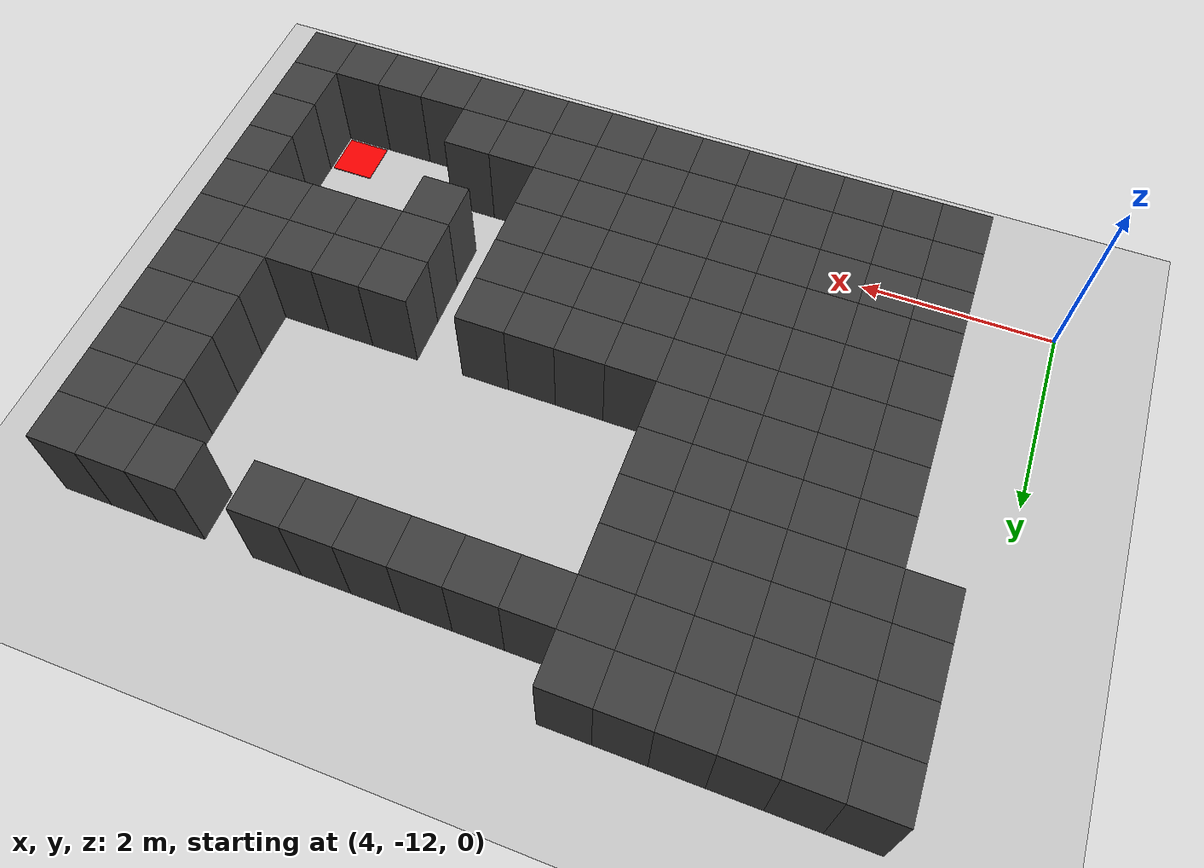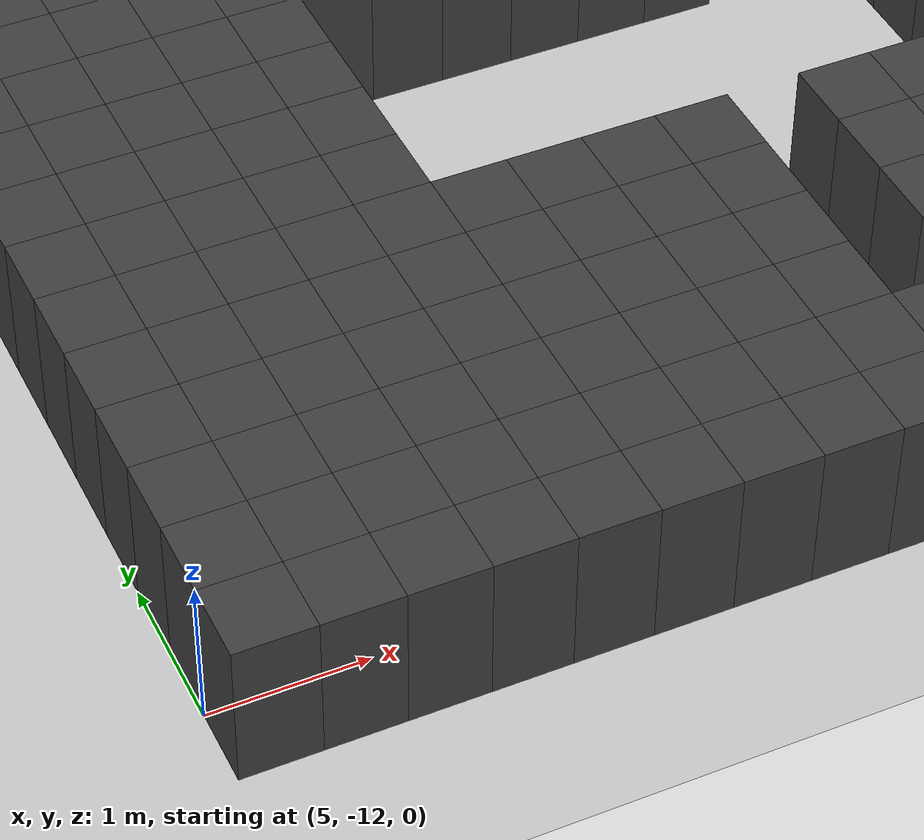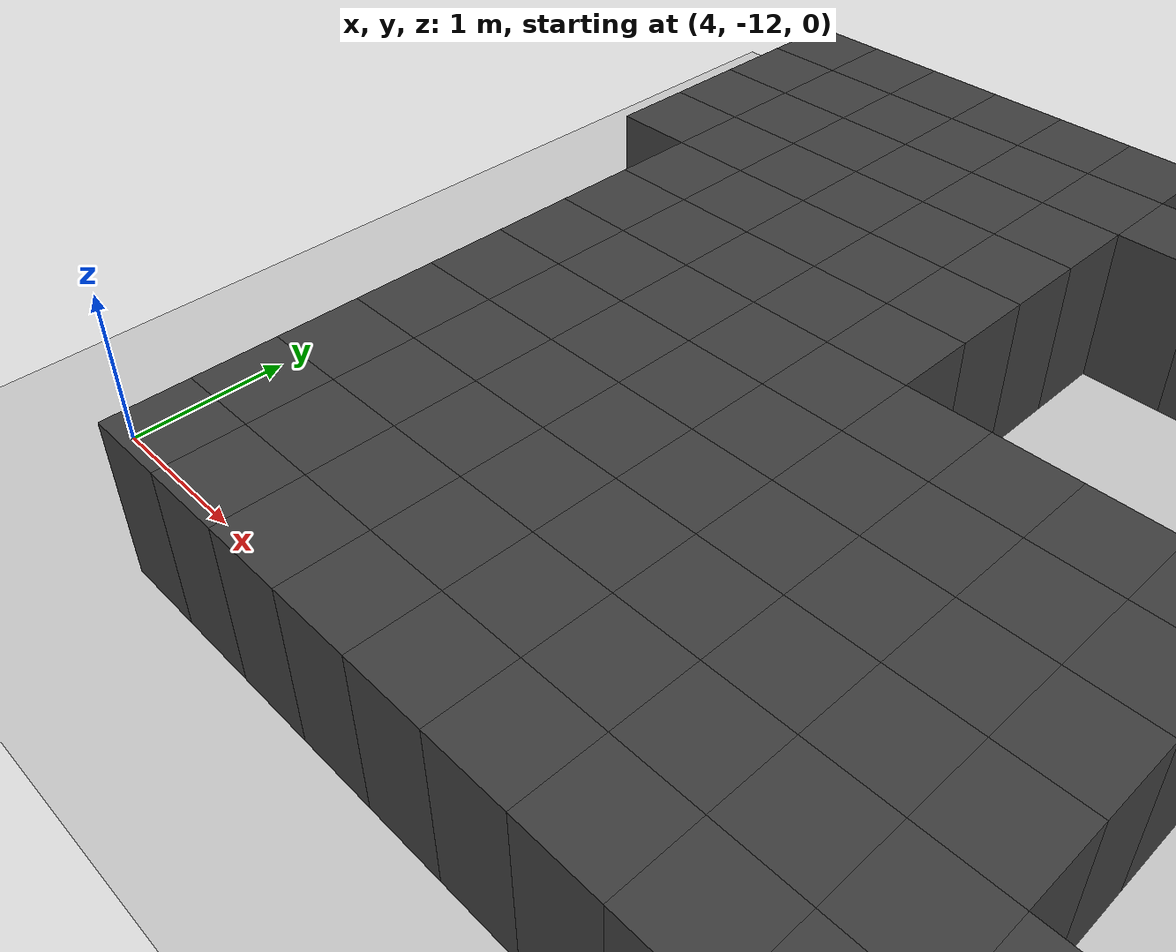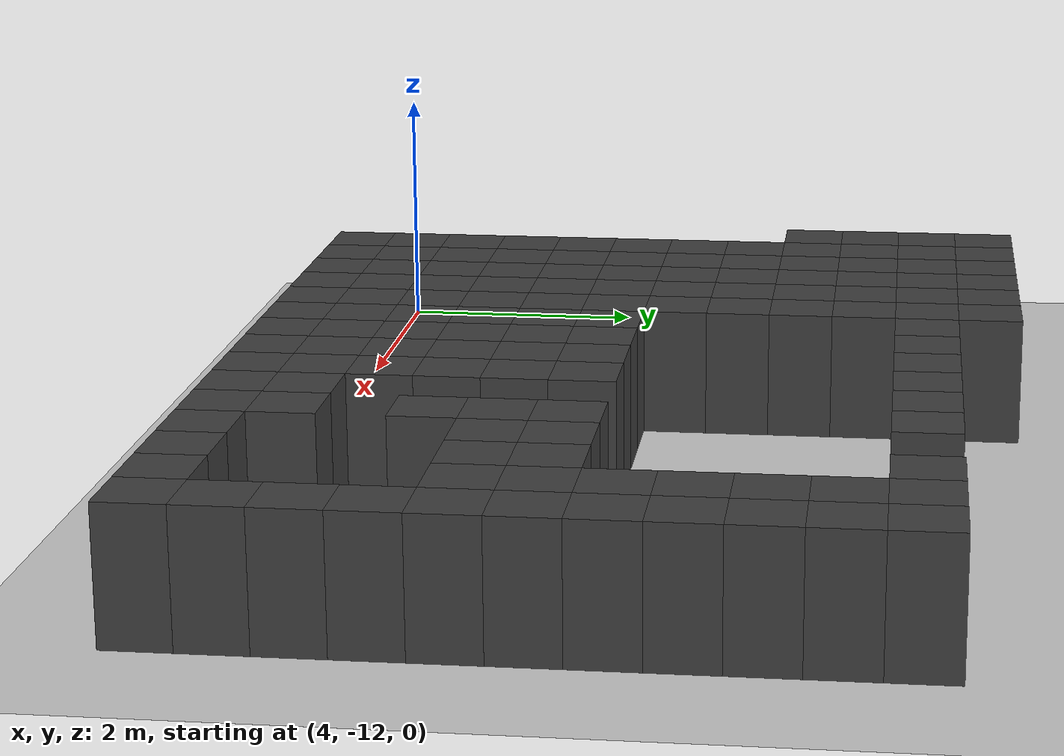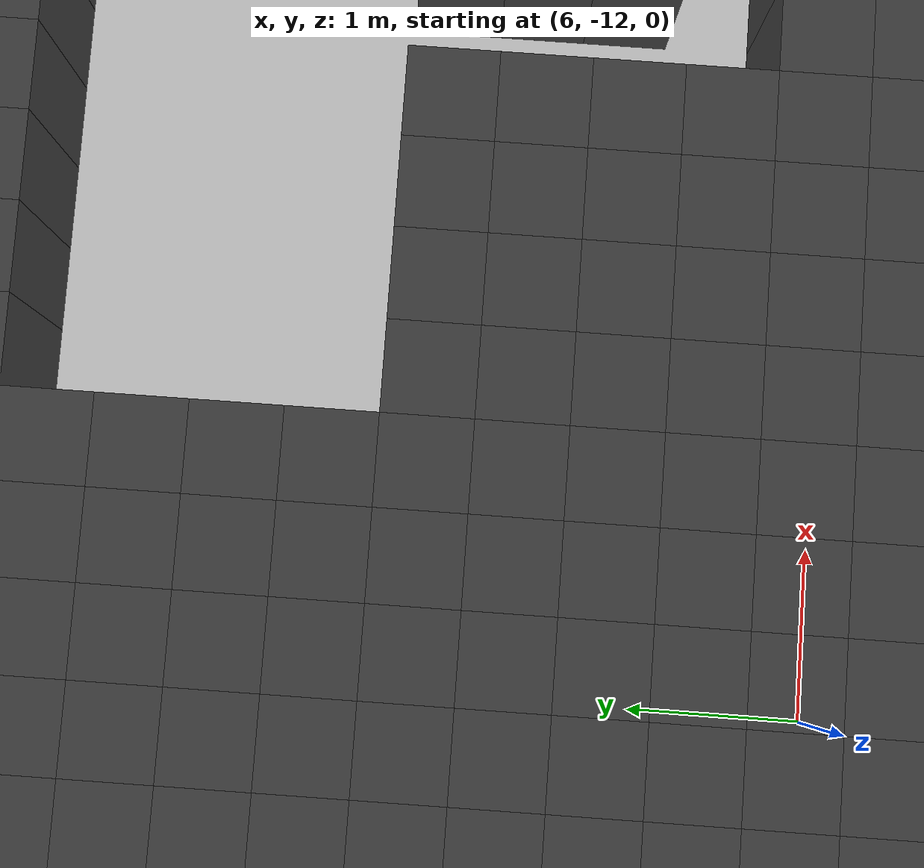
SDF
<sdf version="1.7">
 <world name="map_14735">
  <model name="ground_plane">
   <static>true</static>
   <link name="link">
    <collision name="collision">
     <geometry><plane><normal>0 0 1</normal><size>200 200</size></plane></geometry>
    </collision>
    <visual name="visual">
     <geometry><plane><normal>0 0 1</normal><size>200 200</size></plane></geometry>
     <material><ambient>0.8 0.8 0.8 1</ambient><diffuse>0.8 0.8 0.8 1</diffuse></material>
    </visual>
   </link>
  </model>
  <model name="maze_environment">
   <static>true</static>
   <link name="wall_1281">
    <pose>4.750 -6.750 0.500 0 0 0</pose>
    <collision name="col"><geometry><box><size>0.5 0.5 1.0</size></box></geometry></collision>
    <visual name="vis">
     <geometry><box><size>0.5 0.5 1.0</size></box></geometry>
     <material><ambient>0.15 0.15 0.15 1</ambient><diffuse>0.25 0.25 0.25 1</diffuse></material>
    </visual>
   </link>
   <link name="wall_1282">
    <pose>5.250 -6.750 0.500 0 0 0</pose>
    <collision name="col"><geometry><box><size>0.5 0.5 1.0</size></box></geometry></collision>
    <visual name="vis">
     <geometry><box><size>0.5 0.5 1.0</size></box></geometry>
     <material><ambient>0.15 0.15 0.15 1</ambient><diffuse>0.25 0.25 0.25 1</diffuse></material>
    </visual>
   </link>
   <link name="wall_1283">
    <pose>5.750 -6.750 0.500 0 0 0</pose>
    <collision name="col"><geometry><box><size>0.5 0.5 1.0</size></box></geometry></collision>
    <visual name="vis">
     <geometry><box><size>0.5 0.5 1.0</size></box></geometry>
     <material><ambient>0.15 0.15 0.15 1</ambient><diffuse>0.25 0.25 0.25 1</diffuse></material>
    </visual>
   </link>
   <link name="wall_1284">
    <pose>6.250 -6.750 0.500 0 0 0</pose>
    <collision name="col"><geometry><box><size>0.5 0.5 1.0</size></box></geometry></collision>
    <visual name="vis">
     <geometry><box><size>0.5 0.5 1.0</size></box></geometry>
     <material><ambient>0.15 0.15 0.15 1</ambient><diffuse>0.25 0.25 0.25 1</diffuse></material>
    </visual>
   </link>
   <link name="wall_1285">
    <pose>6.750 -6.750 0.500 0 0 0</pose>
    <collision name="col"><geometry><box><size>0.5 0.5 1.0</size></box></geometry></collision>
    <visual name="vis">
     <geometry><box><size>0.5 0.5 1.0</size></box></geometry>
     <material><ambient>0.15 0.15 0.15 1</ambient><diffuse>0.25 0.25 0.25 1</diffuse></material>
    </visual>
   </link>
   <link name="wall_1286">
    <pose>7.250 -6.750 0.500 0 0 0</pose>
    <collision name="col"><geometry><box><size>0.5 0.5 1.0</size></box></geometry></collision>
    <visual name="vis">
     <geometry><box><size>0.5 0.5 1.0</size></box></geometry>
     <material><ambient>0.15 0.15 0.15 1</ambient><diffuse>0.25 0.25 0.25 1</diffuse></material>
    </visual>
   </link>
   <link name="wall_1322">
    <pose>4.750 -7.250 0.500 0 0 0</pose>
    <collision name="col"><geometry><box><size>0.5 0.5 1.0</size></box></geometry></collision>
    <visual name="vis">
     <geometry><box><size>0.5 0.5 1.0</size></box></geometry>
     <material><ambient>0.15 0.15 0.15 1</ambient><diffuse>0.25 0.25 0.25 1</diffuse></material>
    </visual>
   </link>
   <link name="wall_1323">
    <pose>5.250 -7.250 0.500 0 0 0</pose>
    <collision name="col"><geometry><box><size>0.5 0.5 1.0</size></box></geometry></collision>
    <visual name="vis">
     <geometry><box><size>0.5 0.5 1.0</size></box></geometry>
     <material><ambient>0.15 0.15 0.15 1</ambient><diffuse>0.25 0.25 0.25 1</diffuse></material>
    </visual>
   </link>
   <link name="wall_1324">
    <pose>5.750 -7.250 0.500 0 0 0</pose>
    <collision name="col"><geometry><box><size>0.5 0.5 1.0</size></box></geometry></collision>
    <visual name="vis">
     <geometry><box><size>0.5 0.5 1.0</size></box></geometry>
     <material><ambient>0.15 0.15 0.15 1</ambient><diffuse>0.25 0.25 0.25 1</diffuse></material>
    </visual>
   </link>
   <link name="wall_1325">
    <pose>6.250 -7.250 0.500 0 0 0</pose>
    <collision name="col"><geometry><box><size>0.5 0.5 1.0</size></box></geometry></collision>
    <visual name="vis">
     <geometry><box><size>0.5 0.5 1.0</size></box></geometry>
     <material><ambient>0.15 0.15 0.15 1</ambient><diffuse>0.25 0.25 0.25 1</diffuse></material>
    </visual>
   </link>
   <link name="wall_1326">
    <pose>6.750 -7.250 0.500 0 0 0</pose>
    <collision name="col"><geometry><box><size>0.5 0.5 1.0</size></box></geometry></collision>
    <visual name="vis">
     <geometry><box><size>0.5 0.5 1.0</size></box></geometry>
     <material><ambient>0.15 0.15 0.15 1</ambient><diffuse>0.25 0.25 0.25 1</diffuse></material>
    </visual>
   </link>
   <link name="wall_1327">
    <pose>7.250 -7.250 0.500 0 0 0</pose>
    <collision name="col"><geometry><box><size>0.5 0.5 1.0</size></box></geometry></collision>
    <visual name="vis">
     <geometry><box><size>0.5 0.5 1.0</size></box></geometry>
     <material><ambient>0.15 0.15 0.15 1</ambient><diffuse>0.25 0.25 0.25 1</diffuse></material>
    </visual>
   </link>
   <link name="wall_1328">
    <pose>7.750 -7.250 0.500 0 0 0</pose>
    <collision name="col"><geometry><box><size>0.5 0.5 1.0</size></box></geometry></collision>
    <visual name="vis">
     <geometry><box><size>0.5 0.5 1.0</size></box></geometry>
     <material><ambient>0.15 0.15 0.15 1</ambient><diffuse>0.25 0.25 0.25 1</diffuse></material>
    </visual>
   </link>
   <link name="wall_1329">
    <pose>8.250 -7.250 0.500 0 0 0</pose>
    <collision name="col"><geometry><box><size>0.5 0.5 1.0</size></box></geometry></collision>
    <visual name="vis">
     <geometry><box><size>0.5 0.5 1.0</size></box></geometry>
     <material><ambient>0.15 0.15 0.15 1</ambient><diffuse>0.25 0.25 0.25 1</diffuse></material>
    </visual>
   </link>
   <link name="wall_1330">
    <pose>8.750 -7.250 0.500 0 0 0</pose>
    <collision name="col"><geometry><box><size>0.5 0.5 1.0</size></box></geometry></collision>
    <visual name="vis">
     <geometry><box><size>0.5 0.5 1.0</size></box></geometry>
     <material><ambient>0.15 0.15 0.15 1</ambient><diffuse>0.25 0.25 0.25 1</diffuse></material>
    </visual>
   </link>
   <link name="wall_1331">
    <pose>9.250 -7.250 0.500 0 0 0</pose>
    <collision name="col"><geometry><box><size>0.5 0.5 1.0</size></box></geometry></collision>
    <visual name="vis">
     <geometry><box><size>0.5 0.5 1.0</size></box></geometry>
     <material><ambient>0.15 0.15 0.15 1</ambient><diffuse>0.25 0.25 0.25 1</diffuse></material>
    </visual>
   </link>
   <link name="wall_1332">
    <pose>9.750 -7.250 0.500 0 0 0</pose>
    <collision name="col"><geometry><box><size>0.5 0.5 1.0</size></box></geometry></collision>
    <visual name="vis">
     <geometry><box><size>0.5 0.5 1.0</size></box></geometry>
     <material><ambient>0.15 0.15 0.15 1</ambient><diffuse>0.25 0.25 0.25 1</diffuse></material>
    </visual>
   </link>
   <link name="wall_1333">
    <pose>10.250 -7.250 0.500 0 0 0</pose>
    <collision name="col"><geometry><box><size>0.5 0.5 1.0</size></box></geometry></collision>
    <visual name="vis">
     <geometry><box><size>0.5 0.5 1.0</size></box></geometry>
     <material><ambient>0.15 0.15 0.15 1</ambient><diffuse>0.25 0.25 0.25 1</diffuse></material>
    </visual>
   </link>
   <link name="wall_1334">
    <pose>11.250 -7.250 0.500 0 0 0</pose>
    <collision name="col"><geometry><box><size>0.5 0.5 1.0</size></box></geometry></collision>
    <visual name="vis">
     <geometry><box><size>0.5 0.5 1.0</size></box></geometry>
     <material><ambient>0.15 0.15 0.15 1</ambient><diffuse>0.25 0.25 0.25 1</diffuse></material>
    </visual>
   </link>
   <link name="wall_1335">
    <pose>11.750 -7.250 0.500 0 0 0</pose>
    <collision name="col"><geometry><box><size>0.5 0.5 1.0</size></box></geometry></collision>
    <visual name="vis">
     <geometry><box><size>0.5 0.5 1.0</size></box></geometry>
     <material><ambient>0.15 0.15 0.15 1</ambient><diffuse>0.25 0.25 0.25 1</diffuse></material>
    </visual>
   </link>
   <link name="wall_1336">
    <pose>12.250 -7.250 0.500 0 0 0</pose>
    <collision name="col"><geometry><box><size>0.5 0.5 1.0</size></box></geometry></collision>
    <visual name="vis">
     <geometry><box><size>0.5 0.5 1.0</size></box></geometry>
     <material><ambient>0.15 0.15 0.15 1</ambient><diffuse>0.25 0.25 0.25 1</diffuse></material>
    </visual>
   </link>
   <link name="wall_1371">
    <pose>4.750 -7.750 0.500 0 0 0</pose>
    <collision name="col"><geometry><box><size>0.5 0.5 1.0</size></box></geometry></collision>
    <visual name="vis">
     <geometry><box><size>0.5 0.5 1.0</size></box></geometry>
     <material><ambient>0.15 0.15 0.15 1</ambient><diffuse>0.25 0.25 0.25 1</diffuse></material>
    </visual>
   </link>
   <link name="wall_1372">
    <pose>5.250 -7.750 0.500 0 0 0</pose>
    <collision name="col"><geometry><box><size>0.5 0.5 1.0</size></box></geometry></collision>
    <visual name="vis">
     <geometry><box><size>0.5 0.5 1.0</size></box></geometry>
     <material><ambient>0.15 0.15 0.15 1</ambient><diffuse>0.25 0.25 0.25 1</diffuse></material>
    </visual>
   </link>
   <link name="wall_1373">
    <pose>5.750 -7.750 0.500 0 0 0</pose>
    <collision name="col"><geometry><box><size>0.5 0.5 1.0</size></box></geometry></collision>
    <visual name="vis">
     <geometry><box><size>0.5 0.5 1.0</size></box></geometry>
     <material><ambient>0.15 0.15 0.15 1</ambient><diffuse>0.25 0.25 0.25 1</diffuse></material>
    </visual>
   </link>
   <link name="wall_1374">
    <pose>6.250 -7.750 0.500 0 0 0</pose>
    <collision name="col"><geometry><box><size>0.5 0.5 1.0</size></box></geometry></collision>
    <visual name="vis">
     <geometry><box><size>0.5 0.5 1.0</size></box></geometry>
     <material><ambient>0.15 0.15 0.15 1</ambient><diffuse>0.25 0.25 0.25 1</diffuse></material>
    </visual>
   </link>
   <link name="wall_1375">
    <pose>6.750 -7.750 0.500 0 0 0</pose>
    <collision name="col"><geometry><box><size>0.5 0.5 1.0</size></box></geometry></collision>
    <visual name="vis">
     <geometry><box><size>0.5 0.5 1.0</size></box></geometry>
     <material><ambient>0.15 0.15 0.15 1</ambient><diffuse>0.25 0.25 0.25 1</diffuse></material>
    </visual>
   </link>
   <link name="wall_1376">
    <pose>7.250 -7.750 0.500 0 0 0</pose>
    <collision name="col"><geometry><box><size>0.5 0.5 1.0</size></box></geometry></collision>
    <visual name="vis">
     <geometry><box><size>0.5 0.5 1.0</size></box></geometry>
     <material><ambient>0.15 0.15 0.15 1</ambient><diffuse>0.25 0.25 0.25 1</diffuse></material>
    </visual>
   </link>
   <link name="wall_1377">
    <pose>11.750 -7.750 0.500 0 0 0</pose>
    <collision name="col"><geometry><box><size>0.5 0.5 1.0</size></box></geometry></collision>
    <visual name="vis">
     <geometry><box><size>0.5 0.5 1.0</size></box></geometry>
     <material><ambient>0.15 0.15 0.15 1</ambient><diffuse>0.25 0.25 0.25 1</diffuse></material>
    </visual>
   </link>
   <link name="wall_1378">
    <pose>12.250 -7.750 0.500 0 0 0</pose>
    <collision name="col"><geometry><box><size>0.5 0.5 1.0</size></box></geometry></collision>
    <visual name="vis">
     <geometry><box><size>0.5 0.5 1.0</size></box></geometry>
     <material><ambient>0.15 0.15 0.15 1</ambient><diffuse>0.25 0.25 0.25 1</diffuse></material>
    </visual>
   </link>
   <link name="wall_1413">
    <pose>4.750 -8.250 0.500 0 0 0</pose>
    <collision name="col"><geometry><box><size>0.5 0.5 1.0</size></box></geometry></collision>
    <visual name="vis">
     <geometry><box><size>0.5 0.5 1.0</size></box></geometry>
     <material><ambient>0.15 0.15 0.15 1</ambient><diffuse>0.25 0.25 0.25 1</diffuse></material>
    </visual>
   </link>
   <link name="wall_1414">
    <pose>5.250 -8.250 0.500 0 0 0</pose>
    <collision name="col"><geometry><box><size>0.5 0.5 1.0</size></box></geometry></collision>
    <visual name="vis">
     <geometry><box><size>0.5 0.5 1.0</size></box></geometry>
     <material><ambient>0.15 0.15 0.15 1</ambient><diffuse>0.25 0.25 0.25 1</diffuse></material>
    </visual>
   </link>
   <link name="wall_1415">
    <pose>5.750 -8.250 0.500 0 0 0</pose>
    <collision name="col"><geometry><box><size>0.5 0.5 1.0</size></box></geometry></collision>
    <visual name="vis">
     <geometry><box><size>0.5 0.5 1.0</size></box></geometry>
     <material><ambient>0.15 0.15 0.15 1</ambient><diffuse>0.25 0.25 0.25 1</diffuse></material>
    </visual>
   </link>
   <link name="wall_1416">
    <pose>6.250 -8.250 0.500 0 0 0</pose>
    <collision name="col"><geometry><box><size>0.5 0.5 1.0</size></box></geometry></collision>
    <visual name="vis">
     <geometry><box><size>0.5 0.5 1.0</size></box></geometry>
     <material><ambient>0.15 0.15 0.15 1</ambient><diffuse>0.25 0.25 0.25 1</diffuse></material>
    </visual>
   </link>
   <link name="wall_1417">
    <pose>6.750 -8.250 0.500 0 0 0</pose>
    <collision name="col"><geometry><box><size>0.5 0.5 1.0</size></box></geometry></collision>
    <visual name="vis">
     <geometry><box><size>0.5 0.5 1.0</size></box></geometry>
     <material><ambient>0.15 0.15 0.15 1</ambient><diffuse>0.25 0.25 0.25 1</diffuse></material>
    </visual>
   </link>
   <link name="wall_1418">
    <pose>7.250 -8.250 0.500 0 0 0</pose>
    <collision name="col"><geometry><box><size>0.5 0.5 1.0</size></box></geometry></collision>
    <visual name="vis">
     <geometry><box><size>0.5 0.5 1.0</size></box></geometry>
     <material><ambient>0.15 0.15 0.15 1</ambient><diffuse>0.25 0.25 0.25 1</diffuse></material>
    </visual>
   </link>
   <link name="wall_1419">
    <pose>11.750 -8.250 0.500 0 0 0</pose>
    <collision name="col"><geometry><box><size>0.5 0.5 1.0</size></box></geometry></collision>
    <visual name="vis">
     <geometry><box><size>0.5 0.5 1.0</size></box></geometry>
     <material><ambient>0.15 0.15 0.15 1</ambient><diffuse>0.25 0.25 0.25 1</diffuse></material>
    </visual>
   </link>
   <link name="wall_1420">
    <pose>12.250 -8.250 0.500 0 0 0</pose>
    <collision name="col"><geometry><box><size>0.5 0.5 1.0</size></box></geometry></collision>
    <visual name="vis">
     <geometry><box><size>0.5 0.5 1.0</size></box></geometry>
     <material><ambient>0.15 0.15 0.15 1</ambient><diffuse>0.25 0.25 0.25 1</diffuse></material>
    </visual>
   </link>
   <link name="wall_1456">
    <pose>5.250 -8.750 0.500 0 0 0</pose>
    <collision name="col"><geometry><box><size>0.5 0.5 1.0</size></box></geometry></collision>
    <visual name="vis">
     <geometry><box><size>0.5 0.5 1.0</size></box></geometry>
     <material><ambient>0.15 0.15 0.15 1</ambient><diffuse>0.25 0.25 0.25 1</diffuse></material>
    </visual>
   </link>
   <link name="wall_1457">
    <pose>5.750 -8.750 0.500 0 0 0</pose>
    <collision name="col"><geometry><box><size>0.5 0.5 1.0</size></box></geometry></collision>
    <visual name="vis">
     <geometry><box><size>0.5 0.5 1.0</size></box></geometry>
     <material><ambient>0.15 0.15 0.15 1</ambient><diffuse>0.25 0.25 0.25 1</diffuse></material>
    </visual>
   </link>
   <link name="wall_1458">
    <pose>6.250 -8.750 0.500 0 0 0</pose>
    <collision name="col"><geometry><box><size>0.5 0.5 1.0</size></box></geometry></collision>
    <visual name="vis">
     <geometry><box><size>0.5 0.5 1.0</size></box></geometry>
     <material><ambient>0.15 0.15 0.15 1</ambient><diffuse>0.25 0.25 0.25 1</diffuse></material>
    </visual>
   </link>
   <link name="wall_1459">
    <pose>6.750 -8.750 0.500 0 0 0</pose>
    <collision name="col"><geometry><box><size>0.5 0.5 1.0</size></box></geometry></collision>
    <visual name="vis">
     <geometry><box><size>0.5 0.5 1.0</size></box></geometry>
     <material><ambient>0.15 0.15 0.15 1</ambient><diffuse>0.25 0.25 0.25 1</diffuse></material>
    </visual>
   </link>
   <link name="wall_1460">
    <pose>7.250 -8.750 0.500 0 0 0</pose>
    <collision name="col"><geometry><box><size>0.5 0.5 1.0</size></box></geometry></collision>
    <visual name="vis">
     <geometry><box><size>0.5 0.5 1.0</size></box></geometry>
     <material><ambient>0.15 0.15 0.15 1</ambient><diffuse>0.25 0.25 0.25 1</diffuse></material>
    </visual>
   </link>
   <link name="wall_1461">
    <pose>11.750 -8.750 0.500 0 0 0</pose>
    <collision name="col"><geometry><box><size>0.5 0.5 1.0</size></box></geometry></collision>
    <visual name="vis">
     <geometry><box><size>0.5 0.5 1.0</size></box></geometry>
     <material><ambient>0.15 0.15 0.15 1</ambient><diffuse>0.25 0.25 0.25 1</diffuse></material>
    </visual>
   </link>
   <link name="wall_1462">
    <pose>12.250 -8.750 0.500 0 0 0</pose>
    <collision name="col"><geometry><box><size>0.5 0.5 1.0</size></box></geometry></collision>
    <visual name="vis">
     <geometry><box><size>0.5 0.5 1.0</size></box></geometry>
     <material><ambient>0.15 0.15 0.15 1</ambient><diffuse>0.25 0.25 0.25 1</diffuse></material>
    </visual>
   </link>
   <link name="wall_1498">
    <pose>5.250 -9.250 0.500 0 0 0</pose>
    <collision name="col"><geometry><box><size>0.5 0.5 1.0</size></box></geometry></collision>
    <visual name="vis">
     <geometry><box><size>0.5 0.5 1.0</size></box></geometry>
     <material><ambient>0.15 0.15 0.15 1</ambient><diffuse>0.25 0.25 0.25 1</diffuse></material>
    </visual>
   </link>
   <link name="wall_1499">
    <pose>5.750 -9.250 0.500 0 0 0</pose>
    <collision name="col"><geometry><box><size>0.5 0.5 1.0</size></box></geometry></collision>
    <visual name="vis">
     <geometry><box><size>0.5 0.5 1.0</size></box></geometry>
     <material><ambient>0.15 0.15 0.15 1</ambient><diffuse>0.25 0.25 0.25 1</diffuse></material>
    </visual>
   </link>
   <link name="wall_1500">
    <pose>6.250 -9.250 0.500 0 0 0</pose>
    <collision name="col"><geometry><box><size>0.5 0.5 1.0</size></box></geometry></collision>
    <visual name="vis">
     <geometry><box><size>0.5 0.5 1.0</size></box></geometry>
     <material><ambient>0.15 0.15 0.15 1</ambient><diffuse>0.25 0.25 0.25 1</diffuse></material>
    </visual>
   </link>
   <link name="wall_1501">
    <pose>6.750 -9.250 0.500 0 0 0</pose>
    <collision name="col"><geometry><box><size>0.5 0.5 1.0</size></box></geometry></collision>
    <visual name="vis">
     <geometry><box><size>0.5 0.5 1.0</size></box></geometry>
     <material><ambient>0.15 0.15 0.15 1</ambient><diffuse>0.25 0.25 0.25 1</diffuse></material>
    </visual>
   </link>
   <link name="wall_1502">
    <pose>7.250 -9.250 0.500 0 0 0</pose>
    <collision name="col"><geometry><box><size>0.5 0.5 1.0</size></box></geometry></collision>
    <visual name="vis">
     <geometry><box><size>0.5 0.5 1.0</size></box></geometry>
     <material><ambient>0.15 0.15 0.15 1</ambient><diffuse>0.25 0.25 0.25 1</diffuse></material>
    </visual>
   </link>
   <link name="wall_1503">
    <pose>11.750 -9.250 0.500 0 0 0</pose>
    <collision name="col"><geometry><box><size>0.5 0.5 1.0</size></box></geometry></collision>
    <visual name="vis">
     <geometry><box><size>0.5 0.5 1.0</size></box></geometry>
     <material><ambient>0.15 0.15 0.15 1</ambient><diffuse>0.25 0.25 0.25 1</diffuse></material>
    </visual>
   </link>
   <link name="wall_1504">
    <pose>12.250 -9.250 0.500 0 0 0</pose>
    <collision name="col"><geometry><box><size>0.5 0.5 1.0</size></box></geometry></collision>
    <visual name="vis">
     <geometry><box><size>0.5 0.5 1.0</size></box></geometry>
     <material><ambient>0.15 0.15 0.15 1</ambient><diffuse>0.25 0.25 0.25 1</diffuse></material>
    </visual>
   </link>
   <link name="wall_1540">
    <pose>5.250 -9.750 0.500 0 0 0</pose>
    <collision name="col"><geometry><box><size>0.5 0.5 1.0</size></box></geometry></collision>
    <visual name="vis">
     <geometry><box><size>0.5 0.5 1.0</size></box></geometry>
     <material><ambient>0.15 0.15 0.15 1</ambient><diffuse>0.25 0.25 0.25 1</diffuse></material>
    </visual>
   </link>
   <link name="wall_1541">
    <pose>5.750 -9.750 0.500 0 0 0</pose>
    <collision name="col"><geometry><box><size>0.5 0.5 1.0</size></box></geometry></collision>
    <visual name="vis">
     <geometry><box><size>0.5 0.5 1.0</size></box></geometry>
     <material><ambient>0.15 0.15 0.15 1</ambient><diffuse>0.25 0.25 0.25 1</diffuse></material>
    </visual>
   </link>
   <link name="wall_1542">
    <pose>6.250 -9.750 0.500 0 0 0</pose>
    <collision name="col"><geometry><box><size>0.5 0.5 1.0</size></box></geometry></collision>
    <visual name="vis">
     <geometry><box><size>0.5 0.5 1.0</size></box></geometry>
     <material><ambient>0.15 0.15 0.15 1</ambient><diffuse>0.25 0.25 0.25 1</diffuse></material>
    </visual>
   </link>
   <link name="wall_1543">
    <pose>6.750 -9.750 0.500 0 0 0</pose>
    <collision name="col"><geometry><box><size>0.5 0.5 1.0</size></box></geometry></collision>
    <visual name="vis">
     <geometry><box><size>0.5 0.5 1.0</size></box></geometry>
     <material><ambient>0.15 0.15 0.15 1</ambient><diffuse>0.25 0.25 0.25 1</diffuse></material>
    </visual>
   </link>
   <link name="wall_1544">
    <pose>7.250 -9.750 0.500 0 0 0</pose>
    <collision name="col"><geometry><box><size>0.5 0.5 1.0</size></box></geometry></collision>
    <visual name="vis">
     <geometry><box><size>0.5 0.5 1.0</size></box></geometry>
     <material><ambient>0.15 0.15 0.15 1</ambient><diffuse>0.25 0.25 0.25 1</diffuse></material>
    </visual>
   </link>
   <link name="wall_1545">
    <pose>7.750 -9.750 0.500 0 0 0</pose>
    <collision name="col"><geometry><box><size>0.5 0.5 1.0</size></box></geometry></collision>
    <visual name="vis">
     <geometry><box><size>0.5 0.5 1.0</size></box></geometry>
     <material><ambient>0.15 0.15 0.15 1</ambient><diffuse>0.25 0.25 0.25 1</diffuse></material>
    </visual>
   </link>
   <link name="wall_1546">
    <pose>8.250 -9.750 0.500 0 0 0</pose>
    <collision name="col"><geometry><box><size>0.5 0.5 1.0</size></box></geometry></collision>
    <visual name="vis">
     <geometry><box><size>0.5 0.5 1.0</size></box></geometry>
     <material><ambient>0.15 0.15 0.15 1</ambient><diffuse>0.25 0.25 0.25 1</diffuse></material>
    </visual>
   </link>
   <link name="wall_1547">
    <pose>8.750 -9.750 0.500 0 0 0</pose>
    <collision name="col"><geometry><box><size>0.5 0.5 1.0</size></box></geometry></collision>
    <visual name="vis">
     <geometry><box><size>0.5 0.5 1.0</size></box></geometry>
     <material><ambient>0.15 0.15 0.15 1</ambient><diffuse>0.25 0.25 0.25 1</diffuse></material>
    </visual>
   </link>
   <link name="wall_1548">
    <pose>9.250 -9.750 0.500 0 0 0</pose>
    <collision name="col"><geometry><box><size>0.5 0.5 1.0</size></box></geometry></collision>
    <visual name="vis">
     <geometry><box><size>0.5 0.5 1.0</size></box></geometry>
     <material><ambient>0.15 0.15 0.15 1</ambient><diffuse>0.25 0.25 0.25 1</diffuse></material>
    </visual>
   </link>
   <link name="wall_1549">
    <pose>10.250 -9.750 0.500 0 0 0</pose>
    <collision name="col"><geometry><box><size>0.5 0.5 1.0</size></box></geometry></collision>
    <visual name="vis">
     <geometry><box><size>0.5 0.5 1.0</size></box></geometry>
     <material><ambient>0.15 0.15 0.15 1</ambient><diffuse>0.25 0.25 0.25 1</diffuse></material>
    </visual>
   </link>
   <link name="wall_1550">
    <pose>10.750 -9.750 0.500 0 0 0</pose>
    <collision name="col"><geometry><box><size>0.5 0.5 1.0</size></box></geometry></collision>
    <visual name="vis">
     <geometry><box><size>0.5 0.5 1.0</size></box></geometry>
     <material><ambient>0.15 0.15 0.15 1</ambient><diffuse>0.25 0.25 0.25 1</diffuse></material>
    </visual>
   </link>
   <link name="wall_1551">
    <pose>11.250 -9.750 0.500 0 0 0</pose>
    <collision name="col"><geometry><box><size>0.5 0.5 1.0</size></box></geometry></collision>
    <visual name="vis">
     <geometry><box><size>0.5 0.5 1.0</size></box></geometry>
     <material><ambient>0.15 0.15 0.15 1</ambient><diffuse>0.25 0.25 0.25 1</diffuse></material>
    </visual>
   </link>
   <link name="wall_1552">
    <pose>11.750 -9.750 0.500 0 0 0</pose>
    <collision name="col"><geometry><box><size>0.5 0.5 1.0</size></box></geometry></collision>
    <visual name="vis">
     <geometry><box><size>0.5 0.5 1.0</size></box></geometry>
     <material><ambient>0.15 0.15 0.15 1</ambient><diffuse>0.25 0.25 0.25 1</diffuse></material>
    </visual>
   </link>
   <link name="wall_1553">
    <pose>12.250 -9.750 0.500 0 0 0</pose>
    <collision name="col"><geometry><box><size>0.5 0.5 1.0</size></box></geometry></collision>
    <visual name="vis">
     <geometry><box><size>0.5 0.5 1.0</size></box></geometry>
     <material><ambient>0.15 0.15 0.15 1</ambient><diffuse>0.25 0.25 0.25 1</diffuse></material>
    </visual>
   </link>
   <link name="wall_1589">
    <pose>5.250 -10.250 0.500 0 0 0</pose>
    <collision name="col"><geometry><box><size>0.5 0.5 1.0</size></box></geometry></collision>
    <visual name="vis">
     <geometry><box><size>0.5 0.5 1.0</size></box></geometry>
     <material><ambient>0.15 0.15 0.15 1</ambient><diffuse>0.25 0.25 0.25 1</diffuse></material>
    </visual>
   </link>
   <link name="wall_1590">
    <pose>5.750 -10.250 0.500 0 0 0</pose>
    <collision name="col"><geometry><box><size>0.5 0.5 1.0</size></box></geometry></collision>
    <visual name="vis">
     <geometry><box><size>0.5 0.5 1.0</size></box></geometry>
     <material><ambient>0.15 0.15 0.15 1</ambient><diffuse>0.25 0.25 0.25 1</diffuse></material>
    </visual>
   </link>
   <link name="wall_1591">
    <pose>6.250 -10.250 0.500 0 0 0</pose>
    <collision name="col"><geometry><box><size>0.5 0.5 1.0</size></box></geometry></collision>
    <visual name="vis">
     <geometry><box><size>0.5 0.5 1.0</size></box></geometry>
     <material><ambient>0.15 0.15 0.15 1</ambient><diffuse>0.25 0.25 0.25 1</diffuse></material>
    </visual>
   </link>
   <link name="wall_1592">
    <pose>6.750 -10.250 0.500 0 0 0</pose>
    <collision name="col"><geometry><box><size>0.5 0.5 1.0</size></box></geometry></collision>
    <visual name="vis">
     <geometry><box><size>0.5 0.5 1.0</size></box></geometry>
     <material><ambient>0.15 0.15 0.15 1</ambient><diffuse>0.25 0.25 0.25 1</diffuse></material>
    </visual>
   </link>
   <link name="wall_1593">
    <pose>7.250 -10.250 0.500 0 0 0</pose>
    <collision name="col"><geometry><box><size>0.5 0.5 1.0</size></box></geometry></collision>
    <visual name="vis">
     <geometry><box><size>0.5 0.5 1.0</size></box></geometry>
     <material><ambient>0.15 0.15 0.15 1</ambient><diffuse>0.25 0.25 0.25 1</diffuse></material>
    </visual>
   </link>
   <link name="wall_1594">
    <pose>7.750 -10.250 0.500 0 0 0</pose>
    <collision name="col"><geometry><box><size>0.5 0.5 1.0</size></box></geometry></collision>
    <visual name="vis">
     <geometry><box><size>0.5 0.5 1.0</size></box></geometry>
     <material><ambient>0.15 0.15 0.15 1</ambient><diffuse>0.25 0.25 0.25 1</diffuse></material>
    </visual>
   </link>
   <link name="wall_1595">
    <pose>8.250 -10.250 0.500 0 0 0</pose>
    <collision name="col"><geometry><box><size>0.5 0.5 1.0</size></box></geometry></collision>
    <visual name="vis">
     <geometry><box><size>0.5 0.5 1.0</size></box></geometry>
     <material><ambient>0.15 0.15 0.15 1</ambient><diffuse>0.25 0.25 0.25 1</diffuse></material>
    </visual>
   </link>
   <link name="wall_1596">
    <pose>8.750 -10.250 0.500 0 0 0</pose>
    <collision name="col"><geometry><box><size>0.5 0.5 1.0</size></box></geometry></collision>
    <visual name="vis">
     <geometry><box><size>0.5 0.5 1.0</size></box></geometry>
     <material><ambient>0.15 0.15 0.15 1</ambient><diffuse>0.25 0.25 0.25 1</diffuse></material>
    </visual>
   </link>
   <link name="wall_1597">
    <pose>9.250 -10.250 0.500 0 0 0</pose>
    <collision name="col"><geometry><box><size>0.5 0.5 1.0</size></box></geometry></collision>
    <visual name="vis">
     <geometry><box><size>0.5 0.5 1.0</size></box></geometry>
     <material><ambient>0.15 0.15 0.15 1</ambient><diffuse>0.25 0.25 0.25 1</diffuse></material>
    </visual>
   </link>
   <link name="wall_1598">
    <pose>10.250 -10.250 0.500 0 0 0</pose>
    <collision name="col"><geometry><box><size>0.5 0.5 1.0</size></box></geometry></collision>
    <visual name="vis">
     <geometry><box><size>0.5 0.5 1.0</size></box></geometry>
     <material><ambient>0.15 0.15 0.15 1</ambient><diffuse>0.25 0.25 0.25 1</diffuse></material>
    </visual>
   </link>
   <link name="wall_1599">
    <pose>10.750 -10.250 0.500 0 0 0</pose>
    <collision name="col"><geometry><box><size>0.5 0.5 1.0</size></box></geometry></collision>
    <visual name="vis">
     <geometry><box><size>0.5 0.5 1.0</size></box></geometry>
     <material><ambient>0.15 0.15 0.15 1</ambient><diffuse>0.25 0.25 0.25 1</diffuse></material>
    </visual>
   </link>
   <link name="wall_1600">
    <pose>11.250 -10.250 0.500 0 0 0</pose>
    <collision name="col"><geometry><box><size>0.5 0.5 1.0</size></box></geometry></collision>
    <visual name="vis">
     <geometry><box><size>0.5 0.5 1.0</size></box></geometry>
     <material><ambient>0.15 0.15 0.15 1</ambient><diffuse>0.25 0.25 0.25 1</diffuse></material>
    </visual>
   </link>
   <link name="wall_1601">
    <pose>11.750 -10.250 0.500 0 0 0</pose>
    <collision name="col"><geometry><box><size>0.5 0.5 1.0</size></box></geometry></collision>
    <visual name="vis">
     <geometry><box><size>0.5 0.5 1.0</size></box></geometry>
     <material><ambient>0.15 0.15 0.15 1</ambient><diffuse>0.25 0.25 0.25 1</diffuse></material>
    </visual>
   </link>
   <link name="wall_1602">
    <pose>12.250 -10.250 0.500 0 0 0</pose>
    <collision name="col"><geometry><box><size>0.5 0.5 1.0</size></box></geometry></collision>
    <visual name="vis">
     <geometry><box><size>0.5 0.5 1.0</size></box></geometry>
     <material><ambient>0.15 0.15 0.15 1</ambient><diffuse>0.25 0.25 0.25 1</diffuse></material>
    </visual>
   </link>
   <link name="wall_1638">
    <pose>5.250 -10.750 0.500 0 0 0</pose>
    <collision name="col"><geometry><box><size>0.5 0.5 1.0</size></box></geometry></collision>
    <visual name="vis">
     <geometry><box><size>0.5 0.5 1.0</size></box></geometry>
     <material><ambient>0.15 0.15 0.15 1</ambient><diffuse>0.25 0.25 0.25 1</diffuse></material>
    </visual>
   </link>
   <link name="wall_1639">
    <pose>5.750 -10.750 0.500 0 0 0</pose>
    <collision name="col"><geometry><box><size>0.5 0.5 1.0</size></box></geometry></collision>
    <visual name="vis">
     <geometry><box><size>0.5 0.5 1.0</size></box></geometry>
     <material><ambient>0.15 0.15 0.15 1</ambient><diffuse>0.25 0.25 0.25 1</diffuse></material>
    </visual>
   </link>
   <link name="wall_1640">
    <pose>6.250 -10.750 0.500 0 0 0</pose>
    <collision name="col"><geometry><box><size>0.5 0.5 1.0</size></box></geometry></collision>
    <visual name="vis">
     <geometry><box><size>0.5 0.5 1.0</size></box></geometry>
     <material><ambient>0.15 0.15 0.15 1</ambient><diffuse>0.25 0.25 0.25 1</diffuse></material>
    </visual>
   </link>
   <link name="wall_1641">
    <pose>6.750 -10.750 0.500 0 0 0</pose>
    <collision name="col"><geometry><box><size>0.5 0.5 1.0</size></box></geometry></collision>
    <visual name="vis">
     <geometry><box><size>0.5 0.5 1.0</size></box></geometry>
     <material><ambient>0.15 0.15 0.15 1</ambient><diffuse>0.25 0.25 0.25 1</diffuse></material>
    </visual>
   </link>
   <link name="wall_1642">
    <pose>7.250 -10.750 0.500 0 0 0</pose>
    <collision name="col"><geometry><box><size>0.5 0.5 1.0</size></box></geometry></collision>
    <visual name="vis">
     <geometry><box><size>0.5 0.5 1.0</size></box></geometry>
     <material><ambient>0.15 0.15 0.15 1</ambient><diffuse>0.25 0.25 0.25 1</diffuse></material>
    </visual>
   </link>
   <link name="wall_1643">
    <pose>7.750 -10.750 0.500 0 0 0</pose>
    <collision name="col"><geometry><box><size>0.5 0.5 1.0</size></box></geometry></collision>
    <visual name="vis">
     <geometry><box><size>0.5 0.5 1.0</size></box></geometry>
     <material><ambient>0.15 0.15 0.15 1</ambient><diffuse>0.25 0.25 0.25 1</diffuse></material>
    </visual>
   </link>
   <link name="wall_1644">
    <pose>8.250 -10.750 0.500 0 0 0</pose>
    <collision name="col"><geometry><box><size>0.5 0.5 1.0</size></box></geometry></collision>
    <visual name="vis">
     <geometry><box><size>0.5 0.5 1.0</size></box></geometry>
     <material><ambient>0.15 0.15 0.15 1</ambient><diffuse>0.25 0.25 0.25 1</diffuse></material>
    </visual>
   </link>
   <link name="wall_1645">
    <pose>8.750 -10.750 0.500 0 0 0</pose>
    <collision name="col"><geometry><box><size>0.5 0.5 1.0</size></box></geometry></collision>
    <visual name="vis">
     <geometry><box><size>0.5 0.5 1.0</size></box></geometry>
     <material><ambient>0.15 0.15 0.15 1</ambient><diffuse>0.25 0.25 0.25 1</diffuse></material>
    </visual>
   </link>
   <link name="wall_1646">
    <pose>9.250 -10.750 0.500 0 0 0</pose>
    <collision name="col"><geometry><box><size>0.5 0.5 1.0</size></box></geometry></collision>
    <visual name="vis">
     <geometry><box><size>0.5 0.5 1.0</size></box></geometry>
     <material><ambient>0.15 0.15 0.15 1</ambient><diffuse>0.25 0.25 0.25 1</diffuse></material>
    </visual>
   </link>
   <link name="wall_1647">
    <pose>10.250 -10.750 0.500 0 0 0</pose>
    <collision name="col"><geometry><box><size>0.5 0.5 1.0</size></box></geometry></collision>
    <visual name="vis">
     <geometry><box><size>0.5 0.5 1.0</size></box></geometry>
     <material><ambient>0.15 0.15 0.15 1</ambient><diffuse>0.25 0.25 0.25 1</diffuse></material>
    </visual>
   </link>
   <link name="wall_1648">
    <pose>12.250 -10.750 0.500 0 0 0</pose>
    <collision name="col"><geometry><box><size>0.5 0.5 1.0</size></box></geometry></collision>
    <visual name="vis">
     <geometry><box><size>0.5 0.5 1.0</size></box></geometry>
     <material><ambient>0.15 0.15 0.15 1</ambient><diffuse>0.25 0.25 0.25 1</diffuse></material>
    </visual>
   </link>
   <link name="wall_1684">
    <pose>5.250 -11.250 0.500 0 0 0</pose>
    <collision name="col"><geometry><box><size>0.5 0.5 1.0</size></box></geometry></collision>
    <visual name="vis">
     <geometry><box><size>0.5 0.5 1.0</size></box></geometry>
     <material><ambient>0.15 0.15 0.15 1</ambient><diffuse>0.25 0.25 0.25 1</diffuse></material>
    </visual>
   </link>
   <link name="wall_1685">
    <pose>5.750 -11.250 0.500 0 0 0</pose>
    <collision name="col"><geometry><box><size>0.5 0.5 1.0</size></box></geometry></collision>
    <visual name="vis">
     <geometry><box><size>0.5 0.5 1.0</size></box></geometry>
     <material><ambient>0.15 0.15 0.15 1</ambient><diffuse>0.25 0.25 0.25 1</diffuse></material>
    </visual>
   </link>
   <link name="wall_1686">
    <pose>6.250 -11.250 0.500 0 0 0</pose>
    <collision name="col"><geometry><box><size>0.5 0.5 1.0</size></box></geometry></collision>
    <visual name="vis">
     <geometry><box><size>0.5 0.5 1.0</size></box></geometry>
     <material><ambient>0.15 0.15 0.15 1</ambient><diffuse>0.25 0.25 0.25 1</diffuse></material>
    </visual>
   </link>
   <link name="wall_1687">
    <pose>6.750 -11.250 0.500 0 0 0</pose>
    <collision name="col"><geometry><box><size>0.5 0.5 1.0</size></box></geometry></collision>
    <visual name="vis">
     <geometry><box><size>0.5 0.5 1.0</size></box></geometry>
     <material><ambient>0.15 0.15 0.15 1</ambient><diffuse>0.25 0.25 0.25 1</diffuse></material>
    </visual>
   </link>
   <link name="wall_1688">
    <pose>7.250 -11.250 0.500 0 0 0</pose>
    <collision name="col"><geometry><box><size>0.5 0.5 1.0</size></box></geometry></collision>
    <visual name="vis">
     <geometry><box><size>0.5 0.5 1.0</size></box></geometry>
     <material><ambient>0.15 0.15 0.15 1</ambient><diffuse>0.25 0.25 0.25 1</diffuse></material>
    </visual>
   </link>
   <link name="wall_1689">
    <pose>7.750 -11.250 0.500 0 0 0</pose>
    <collision name="col"><geometry><box><size>0.5 0.5 1.0</size></box></geometry></collision>
    <visual name="vis">
     <geometry><box><size>0.5 0.5 1.0</size></box></geometry>
     <material><ambient>0.15 0.15 0.15 1</ambient><diffuse>0.25 0.25 0.25 1</diffuse></material>
    </visual>
   </link>
   <link name="wall_1690">
    <pose>8.250 -11.250 0.500 0 0 0</pose>
    <collision name="col"><geometry><box><size>0.5 0.5 1.0</size></box></geometry></collision>
    <visual name="vis">
     <geometry><box><size>0.5 0.5 1.0</size></box></geometry>
     <material><ambient>0.15 0.15 0.15 1</ambient><diffuse>0.25 0.25 0.25 1</diffuse></material>
    </visual>
   </link>
   <link name="wall_1691">
    <pose>8.750 -11.250 0.500 0 0 0</pose>
    <collision name="col"><geometry><box><size>0.5 0.5 1.0</size></box></geometry></collision>
    <visual name="vis">
     <geometry><box><size>0.5 0.5 1.0</size></box></geometry>
     <material><ambient>0.15 0.15 0.15 1</ambient><diffuse>0.25 0.25 0.25 1</diffuse></material>
    </visual>
   </link>
   <link name="wall_1692">
    <pose>9.250 -11.250 0.500 0 0 0</pose>
    <collision name="col"><geometry><box><size>0.5 0.5 1.0</size></box></geometry></collision>
    <visual name="vis">
     <geometry><box><size>0.5 0.5 1.0</size></box></geometry>
     <material><ambient>0.15 0.15 0.15 1</ambient><diffuse>0.25 0.25 0.25 1</diffuse></material>
    </visual>
   </link>
   <link name="wall_1693">
    <pose>12.250 -11.250 0.500 0 0 0</pose>
    <collision name="col"><geometry><box><size>0.5 0.5 1.0</size></box></geometry></collision>
    <visual name="vis">
     <geometry><box><size>0.5 0.5 1.0</size></box></geometry>
     <material><ambient>0.15 0.15 0.15 1</ambient><diffuse>0.25 0.25 0.25 1</diffuse></material>
    </visual>
   </link>
   <link name="wall_1729">
    <pose>5.250 -11.750 0.500 0 0 0</pose>
    <collision name="col"><geometry><box><size>0.5 0.5 1.0</size></box></geometry></collision>
    <visual name="vis">
     <geometry><box><size>0.5 0.5 1.0</size></box></geometry>
     <material><ambient>0.15 0.15 0.15 1</ambient><diffuse>0.25 0.25 0.25 1</diffuse></material>
    </visual>
   </link>
   <link name="wall_1730">
    <pose>5.750 -11.750 0.500 0 0 0</pose>
    <collision name="col"><geometry><box><size>0.5 0.5 1.0</size></box></geometry></collision>
    <visual name="vis">
     <geometry><box><size>0.5 0.5 1.0</size></box></geometry>
     <material><ambient>0.15 0.15 0.15 1</ambient><diffuse>0.25 0.25 0.25 1</diffuse></material>
    </visual>
   </link>
   <link name="wall_1731">
    <pose>6.250 -11.750 0.500 0 0 0</pose>
    <collision name="col"><geometry><box><size>0.5 0.5 1.0</size></box></geometry></collision>
    <visual name="vis">
     <geometry><box><size>0.5 0.5 1.0</size></box></geometry>
     <material><ambient>0.15 0.15 0.15 1</ambient><diffuse>0.25 0.25 0.25 1</diffuse></material>
    </visual>
   </link>
   <link name="wall_1732">
    <pose>6.750 -11.750 0.500 0 0 0</pose>
    <collision name="col"><geometry><box><size>0.5 0.5 1.0</size></box></geometry></collision>
    <visual name="vis">
     <geometry><box><size>0.5 0.5 1.0</size></box></geometry>
     <material><ambient>0.15 0.15 0.15 1</ambient><diffuse>0.25 0.25 0.25 1</diffuse></material>
    </visual>
   </link>
   <link name="wall_1733">
    <pose>7.250 -11.750 0.500 0 0 0</pose>
    <collision name="col"><geometry><box><size>0.5 0.5 1.0</size></box></geometry></collision>
    <visual name="vis">
     <geometry><box><size>0.5 0.5 1.0</size></box></geometry>
     <material><ambient>0.15 0.15 0.15 1</ambient><diffuse>0.25 0.25 0.25 1</diffuse></material>
    </visual>
   </link>
   <link name="wall_1734">
    <pose>7.750 -11.750 0.500 0 0 0</pose>
    <collision name="col"><geometry><box><size>0.5 0.5 1.0</size></box></geometry></collision>
    <visual name="vis">
     <geometry><box><size>0.5 0.5 1.0</size></box></geometry>
     <material><ambient>0.15 0.15 0.15 1</ambient><diffuse>0.25 0.25 0.25 1</diffuse></material>
    </visual>
   </link>
   <link name="wall_1735">
    <pose>8.250 -11.750 0.500 0 0 0</pose>
    <collision name="col"><geometry><box><size>0.5 0.5 1.0</size></box></geometry></collision>
    <visual name="vis">
     <geometry><box><size>0.5 0.5 1.0</size></box></geometry>
     <material><ambient>0.15 0.15 0.15 1</ambient><diffuse>0.25 0.25 0.25 1</diffuse></material>
    </visual>
   </link>
   <link name="wall_1736">
    <pose>8.750 -11.750 0.500 0 0 0</pose>
    <collision name="col"><geometry><box><size>0.5 0.5 1.0</size></box></geometry></collision>
    <visual name="vis">
     <geometry><box><size>0.5 0.5 1.0</size></box></geometry>
     <material><ambient>0.15 0.15 0.15 1</ambient><diffuse>0.25 0.25 0.25 1</diffuse></material>
    </visual>
   </link>
   <link name="wall_1737">
    <pose>9.250 -11.750 0.500 0 0 0</pose>
    <collision name="col"><geometry><box><size>0.5 0.5 1.0</size></box></geometry></collision>
    <visual name="vis">
     <geometry><box><size>0.5 0.5 1.0</size></box></geometry>
     <material><ambient>0.15 0.15 0.15 1</ambient><diffuse>0.25 0.25 0.25 1</diffuse></material>
    </visual>
   </link>
   <link name="wall_1738">
    <pose>9.750 -11.750 0.500 0 0 0</pose>
    <collision name="col"><geometry><box><size>0.5 0.5 1.0</size></box></geometry></collision>
    <visual name="vis">
     <geometry><box><size>0.5 0.5 1.0</size></box></geometry>
     <material><ambient>0.15 0.15 0.15 1</ambient><diffuse>0.25 0.25 0.25 1</diffuse></material>
    </visual>
   </link>
   <link name="wall_1739">
    <pose>10.250 -11.750 0.500 0 0 0</pose>
    <collision name="col"><geometry><box><size>0.5 0.5 1.0</size></box></geometry></collision>
    <visual name="vis">
     <geometry><box><size>0.5 0.5 1.0</size></box></geometry>
     <material><ambient>0.15 0.15 0.15 1</ambient><diffuse>0.25 0.25 0.25 1</diffuse></material>
    </visual>
   </link>
   <link name="wall_1740">
    <pose>12.250 -11.750 0.500 0 0 0</pose>
    <collision name="col"><geometry><box><size>0.5 0.5 1.0</size></box></geometry></collision>
    <visual name="vis">
     <geometry><box><size>0.5 0.5 1.0</size></box></geometry>
     <material><ambient>0.15 0.15 0.15 1</ambient><diffuse>0.25 0.25 0.25 1</diffuse></material>
    </visual>
   </link>
   <link name="wall_1776">
    <pose>5.250 -12.250 0.500 0 0 0</pose>
    <collision name="col"><geometry><box><size>0.5 0.5 1.0</size></box></geometry></collision>
    <visual name="vis">
     <geometry><box><size>0.5 0.5 1.0</size></box></geometry>
     <material><ambient>0.15 0.15 0.15 1</ambient><diffuse>0.25 0.25 0.25 1</diffuse></material>
    </visual>
   </link>
   <link name="wall_1777">
    <pose>5.750 -12.250 0.500 0 0 0</pose>
    <collision name="col"><geometry><box><size>0.5 0.5 1.0</size></box></geometry></collision>
    <visual name="vis">
     <geometry><box><size>0.5 0.5 1.0</size></box></geometry>
     <material><ambient>0.15 0.15 0.15 1</ambient><diffuse>0.25 0.25 0.25 1</diffuse></material>
    </visual>
   </link>
   <link name="wall_1778">
    <pose>6.250 -12.250 0.500 0 0 0</pose>
    <collision name="col"><geometry><box><size>0.5 0.5 1.0</size></box></geometry></collision>
    <visual name="vis">
     <geometry><box><size>0.5 0.5 1.0</size></box></geometry>
     <material><ambient>0.15 0.15 0.15 1</ambient><diffuse>0.25 0.25 0.25 1</diffuse></material>
    </visual>
   </link>
   <link name="wall_1779">
    <pose>6.750 -12.250 0.500 0 0 0</pose>
    <collision name="col"><geometry><box><size>0.5 0.5 1.0</size></box></geometry></collision>
    <visual name="vis">
     <geometry><box><size>0.5 0.5 1.0</size></box></geometry>
     <material><ambient>0.15 0.15 0.15 1</ambient><diffuse>0.25 0.25 0.25 1</diffuse></material>
    </visual>
   </link>
   <link name="wall_1780">
    <pose>7.250 -12.250 0.500 0 0 0</pose>
    <collision name="col"><geometry><box><size>0.5 0.5 1.0</size></box></geometry></collision>
    <visual name="vis">
     <geometry><box><size>0.5 0.5 1.0</size></box></geometry>
     <material><ambient>0.15 0.15 0.15 1</ambient><diffuse>0.25 0.25 0.25 1</diffuse></material>
    </visual>
   </link>
   <link name="wall_1781">
    <pose>7.750 -12.250 0.500 0 0 0</pose>
    <collision name="col"><geometry><box><size>0.5 0.5 1.0</size></box></geometry></collision>
    <visual name="vis">
     <geometry><box><size>0.5 0.5 1.0</size></box></geometry>
     <material><ambient>0.15 0.15 0.15 1</ambient><diffuse>0.25 0.25 0.25 1</diffuse></material>
    </visual>
   </link>
   <link name="wall_1782">
    <pose>8.250 -12.250 0.500 0 0 0</pose>
    <collision name="col"><geometry><box><size>0.5 0.5 1.0</size></box></geometry></collision>
    <visual name="vis">
     <geometry><box><size>0.5 0.5 1.0</size></box></geometry>
     <material><ambient>0.15 0.15 0.15 1</ambient><diffuse>0.25 0.25 0.25 1</diffuse></material>
    </visual>
   </link>
   <link name="wall_1783">
    <pose>8.750 -12.250 0.500 0 0 0</pose>
    <collision name="col"><geometry><box><size>0.5 0.5 1.0</size></box></geometry></collision>
    <visual name="vis">
     <geometry><box><size>0.5 0.5 1.0</size></box></geometry>
     <material><ambient>0.15 0.15 0.15 1</ambient><diffuse>0.25 0.25 0.25 1</diffuse></material>
    </visual>
   </link>
   <link name="wall_1784">
    <pose>9.250 -12.250 0.500 0 0 0</pose>
    <collision name="col"><geometry><box><size>0.5 0.5 1.0</size></box></geometry></collision>
    <visual name="vis">
     <geometry><box><size>0.5 0.5 1.0</size></box></geometry>
     <material><ambient>0.15 0.15 0.15 1</ambient><diffuse>0.25 0.25 0.25 1</diffuse></material>
    </visual>
   </link>
   <link name="wall_1785">
    <pose>9.750 -12.250 0.500 0 0 0</pose>
    <collision name="col"><geometry><box><size>0.5 0.5 1.0</size></box></geometry></collision>
    <visual name="vis">
     <geometry><box><size>0.5 0.5 1.0</size></box></geometry>
     <material><ambient>0.15 0.15 0.15 1</ambient><diffuse>0.25 0.25 0.25 1</diffuse></material>
    </visual>
   </link>
   <link name="wall_1786">
    <pose>10.250 -12.250 0.500 0 0 0</pose>
    <collision name="col"><geometry><box><size>0.5 0.5 1.0</size></box></geometry></collision>
    <visual name="vis">
     <geometry><box><size>0.5 0.5 1.0</size></box></geometry>
     <material><ambient>0.15 0.15 0.15 1</ambient><diffuse>0.25 0.25 0.25 1</diffuse></material>
    </visual>
   </link>
   <link name="wall_1787">
    <pose>10.750 -12.250 0.500 0 0 0</pose>
    <collision name="col"><geometry><box><size>0.5 0.5 1.0</size></box></geometry></collision>
    <visual name="vis">
     <geometry><box><size>0.5 0.5 1.0</size></box></geometry>
     <material><ambient>0.15 0.15 0.15 1</ambient><diffuse>0.25 0.25 0.25 1</diffuse></material>
    </visual>
   </link>
   <link name="wall_1788">
    <pose>11.250 -12.250 0.500 0 0 0</pose>
    <collision name="col"><geometry><box><size>0.5 0.5 1.0</size></box></geometry></collision>
    <visual name="vis">
     <geometry><box><size>0.5 0.5 1.0</size></box></geometry>
     <material><ambient>0.15 0.15 0.15 1</ambient><diffuse>0.25 0.25 0.25 1</diffuse></material>
    </visual>
   </link>
   <link name="wall_1789">
    <pose>11.750 -12.250 0.500 0 0 0</pose>
    <collision name="col"><geometry><box><size>0.5 0.5 1.0</size></box></geometry></collision>
    <visual name="vis">
     <geometry><box><size>0.5 0.5 1.0</size></box></geometry>
     <material><ambient>0.15 0.15 0.15 1</ambient><diffuse>0.25 0.25 0.25 1</diffuse></material>
    </visual>
   </link>
   <link name="wall_1790">
    <pose>12.250 -12.250 0.500 0 0 0</pose>
    <collision name="col"><geometry><box><size>0.5 0.5 1.0</size></box></geometry></collision>
    <visual name="vis">
     <geometry><box><size>0.5 0.5 1.0</size></box></geometry>
     <material><ambient>0.15 0.15 0.15 1</ambient><diffuse>0.25 0.25 0.25 1</diffuse></material>
    </visual>
   </link>
   <link name="goal_zone">
    <pose>11.750 -11.750 0.005 0 0 0</pose>
    <visual name="vis">
     <geometry><box><size>0.45 0.45 0.01</size></box></geometry>
     <material>
      <ambient>1.0 0.0 0.0 1</ambient>
      <diffuse>1.0 0.0 0.0 1</diffuse>
      <emissive>0.60 0.00 0.00 1</emissive>
     </material>
    </visual>
   </link>
  </model>
 </world>
</sdf>
